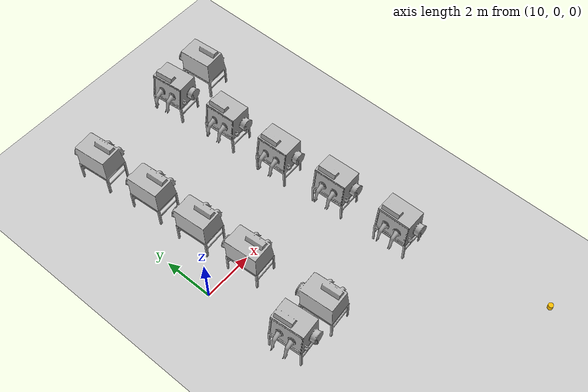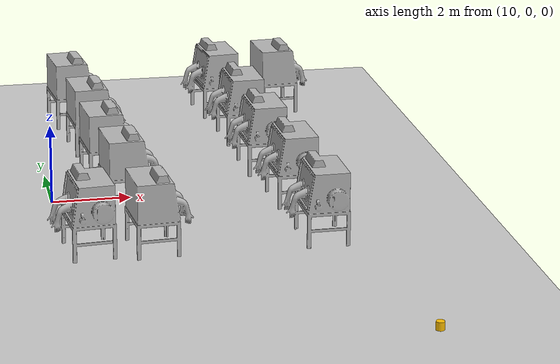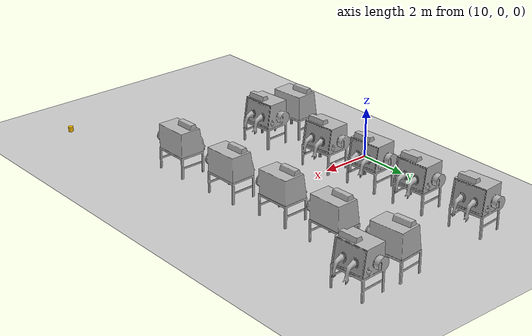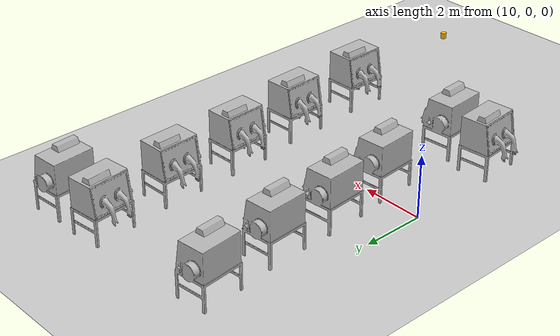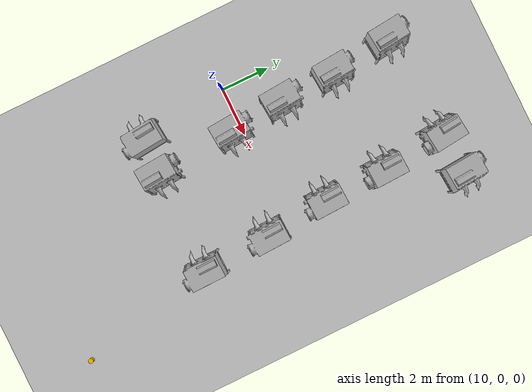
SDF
<sdf version="1.7">
 <world name="default">
  <model name="ground_plane">
   <static>1</static>
   <link name="link">
    <collision name="collision">
     <geometry><plane><normal>0 0 1</normal><size>100 100</size></plane></geometry>
     <surface><friction><ode><mu>100</mu><mu2>50</mu2></ode></friction></surface>
    </collision>
    <visual name="visual">
     <cast_shadows>0</cast_shadows>
     <geometry><plane><normal>0 0 1</normal><size>100 100</size></plane></geometry>
     <material>
      <script><uri>file://media/materials/scripts/gazebo.material</uri><name>Gazebo/Grey</name></script>
     </material>
    </visual>
   </link>
  </model>
  <model name="glovebox">
   <static>0</static>
   <link name="link">
    <visual name="visual">
     <geometry><mesh><uri>model://glovebox/meshes/glovebox.obj</uri></mesh></geometry>
    </visual>
    <collision name="collision">
     <geometry><mesh><uri>model://glovebox/meshes/glovebox.obj</uri></mesh></geometry>
    </collision>
    <inertial>
     <inertia><ixx>1</ixx><ixy>0</ixy><ixz>0</ixz><iyy>1</iyy><iyz>0</iyz><izz>1</izz></inertia>
     <mass>1</mass>
    </inertial>
   </link>
   <pose>15.6331 4.27041 -0.000963 1.57131 0.000806 -1.53503</pose>
  </model>
  <model name="glovebox_clone">
   <static>0</static>
   <link name="link">
    <visual name="visual">
     <geometry><mesh><uri>model://glovebox/meshes/glovebox.obj</uri></mesh></geometry>
    </visual>
    <collision name="collision">
     <geometry><mesh><uri>model://glovebox/meshes/glovebox.obj</uri></mesh></geometry>
    </collision>
    <inertial>
     <inertia><ixx>1</ixx><ixy>0</ixy><ixz>0</ixz><iyy>1</iyy><iyz>0</iyz><izz>1</izz></inertia>
     <mass>1</mass>
    </inertial>
   </link>
   <pose>15.7177 1.72189 -0.000963 1.57131 0.000806 -1.53503</pose>
  </model>
  <model name="glovebox_clone_0">
   <static>0</static>
   <link name="link">
    <visual name="visual">
     <geometry><mesh><uri>model://glovebox/meshes/glovebox.obj</uri></mesh></geometry>
    </visual>
    <collision name="collision">
     <geometry><mesh><uri>model://glovebox/meshes/glovebox.obj</uri></mesh></geometry>
    </collision>
    <inertial>
     <inertia><ixx>1</ixx><ixy>0</ixy><ixz>0</ixz><iyy>1</iyy><iyz>0</iyz><izz>1</izz></inertia>
     <mass>1</mass>
    </inertial>
   </link>
   <pose>15.9724 -0.829517 -0.000963 1.57131 0.000806 -1.53503</pose>
  </model>
  <model name="glovebox_clone_clone">
   <static>0</static>
   <link name="link">
    <visual name="visual">
     <geometry><mesh><uri>model://glovebox/meshes/glovebox.obj</uri></mesh></geometry>
    </visual>
    <collision name="collision">
     <geometry><mesh><uri>model://glovebox/meshes/glovebox.obj</uri></mesh></geometry>
    </collision>
    <inertial>
     <inertia><ixx>1</ixx><ixy>0</ixy><ixz>0</ixz><iyy>1</iyy><iyz>0</iyz><izz>1</izz></inertia>
     <mass>1</mass>
    </inertial>
   </link>
   <pose>16.1075 -3.61877 0.010184 1.5708 5e-06 -1.5577</pose>
  </model>
  <model name="glovebox_clone_1">
   <static>0</static>
   <link name="link">
    <visual name="visual">
     <geometry><mesh><uri>model://glovebox/meshes/glovebox.obj</uri></mesh></geometry>
    </visual>
    <collision name="collision">
     <geometry><mesh><uri>model://glovebox/meshes/glovebox.obj</uri></mesh></geometry>
    </collision>
    <inertial>
     <inertia><ixx>1</ixx><ixy>0</ixy><ixz>0</ixz><iyy>1</iyy><iyz>0</iyz><izz>1</izz></inertia>
     <mass>1</mass>
    </inertial>
   </link>
   <pose>15.3866 6.85437 -0.000963 1.57131 0.000806 -1.47053</pose>
  </model>
  <model name="glovebox_clone_1_clone">
   <static>0</static>
   <link name="link">
    <visual name="visual">
     <geometry><mesh><uri>model://glovebox/meshes/glovebox.obj</uri></mesh></geometry>
    </visual>
    <collision name="collision">
     <geometry><mesh><uri>model://glovebox/meshes/glovebox.obj</uri></mesh></geometry>
    </collision>
    <inertial>
     <inertia><ixx>1</ixx><ixy>0</ixy><ixz>0</ixz><iyy>1</iyy><iyz>0</iyz><izz>1</izz></inertia>
     <mass>1</mass>
    </inertial>
   </link>
   <pose>17.0897 6.90771 -0.000963 1.57131 0.000806 1.64229</pose>
  </model>
  <model name="glovebox_clone_1_clone_clone_3">
   <static>0</static>
   <link name="link">
    <visual name="visual">
     <geometry><mesh><uri>model://glovebox/meshes/glovebox.obj</uri></mesh></geometry>
    </visual>
    <collision name="collision">
     <geometry><mesh><uri>model://glovebox/meshes/glovebox.obj</uri></mesh></geometry>
    </collision>
    <inertial>
     <inertia><ixx>1</ixx><ixy>0</ixy><ixz>0</ixz><iyy>1</iyy><iyz>0</iyz><izz>1</izz></inertia>
     <mass>1</mass>
    </inertial>
   </link>
   <pose>11.1909 6.55629 -0.000963 1.57131 0.000806 1.6663</pose>
  </model>
  <model name="glovebox_clone_1_clone_clone_3_clone">
   <static>0</static>
   <link name="link">
    <visual name="visual">
     <geometry><mesh><uri>model://glovebox/meshes/glovebox.obj</uri></mesh></geometry>
    </visual>
    <collision name="collision">
     <geometry><mesh><uri>model://glovebox/meshes/glovebox.obj</uri></mesh></geometry>
    </collision>
    <inertial>
     <inertia><ixx>1</ixx><ixy>0</ixy><ixz>0</ixz><iyy>1</iyy><iyz>0</iyz><izz>1</izz></inertia>
     <mass>1</mass>
    </inertial>
   </link>
   <pose>11.4535 4.09863 -0.000104 1.57085 0.000199 1.64229</pose>
  </model>
  <model name="glovebox_clone_1_clone_clone_3_clone_0">
   <static>0</static>
   <link name="link">
    <visual name="visual">
     <geometry><mesh><uri>model://glovebox/meshes/glovebox.obj</uri></mesh></geometry>
    </visual>
    <collision name="collision">
     <geometry><mesh><uri>model://glovebox/meshes/glovebox.obj</uri></mesh></geometry>
    </collision>
    <inertial>
     <inertia><ixx>1</ixx><ixy>0</ixy><ixz>0</ixz><iyy>1</iyy><iyz>0</iyz><izz>1</izz></inertia>
     <mass>1</mass>
    </inertial>
   </link>
   <pose>11.5513 1.83462 -0.000172 1.57075 0.000172 1.64229</pose>
  </model>
  <model name="glovebox_clone_1_clone_clone_3_clone_1">
   <static>0</static>
   <link name="link">
    <visual name="visual">
     <geometry><mesh><uri>model://glovebox/meshes/glovebox.obj</uri></mesh></geometry>
    </visual>
    <collision name="collision">
     <geometry><mesh><uri>model://glovebox/meshes/glovebox.obj</uri></mesh></geometry>
    </collision>
    <inertial>
     <inertia><ixx>1</ixx><ixy>0</ixy><ixz>0</ixz><iyy>1</iyy><iyz>0</iyz><izz>1</izz></inertia>
     <mass>1</mass>
    </inertial>
   </link>
   <pose>11.7784 -0.389266 -0.000104 1.57085 0.000199 1.64229</pose>
  </model>
  <model name="glovebox_clone_1_clone_clone_3_clone_2">
   <static>0</static>
   <link name="link">
    <visual name="visual">
     <geometry><mesh><uri>model://glovebox/meshes/glovebox.obj</uri></mesh></geometry>
    </visual>
    <collision name="collision">
     <geometry><mesh><uri>model://glovebox/meshes/glovebox.obj</uri></mesh></geometry>
    </collision>
    <inertial>
     <inertia><ixx>1</ixx><ixy>0</ixy><ixz>0</ixz><iyy>1</iyy><iyz>0</iyz><izz>1</izz></inertia>
     <mass>1</mass>
    </inertial>
   </link>
   <pose>12.0131 -3.58427 -0.000963 1.57131 0.000806 1.64229</pose>
  </model>
  <model name="glovebox_clone_1_clone_3_clone_2">
   <static>0</static>
   <link name="link">
    <visual name="visual">
     <geometry><mesh><uri>model://glovebox/meshes/glovebox.obj</uri></mesh></geometry>
    </visual>
    <collision name="collision">
     <geometry><mesh><uri>model://glovebox/meshes/glovebox.obj</uri></mesh></geometry>
    </collision>
    <inertial>
     <inertia><ixx>1</ixx><ixy>0</ixy><ixz>0</ixz><iyy>1</iyy><iyz>0</iyz><izz>1</izz></inertia>
     <mass>1</mass>
    </inertial>
   </link>
   <pose>10.5211 -3.49439 -0.000791 1.57079 -0.000768 -1.48197</pose>
  </model>
  <model name="cylinder_yo_clone_0">
   <link name="link_0">
    <pose>0 0 0.1 0 -0 0</pose>
    <inertial>
     <mass>1</mass>
     <inertia><ixx>0.145833</ixx><ixy>0</ixy><ixz>0</ixz><iyy>0.145833</iyy><iyz>0</iyz><izz>0.125</izz></inertia>
    </inertial>
    <visual name="visual">
     <geometry><cylinder><radius>0.1</radius><length>0.2</length></cylinder></geometry>
     <material>
      <lighting>1</lighting>
      <script><uri>file://media/materials/scripts/gazebo.material</uri><name>Gazebo/Grey</name></script>
      <ambient>1 0.749 0 1</ambient>
      <diffuse>1 0.749 0 1</diffuse>
      <specular>0 0 0 1</specular>
      <emissive>0 0 0 1</emissive>
      <shader type="vertex"><normal_map>__default__</normal_map></shader>
     </material>
    </visual>
    <collision name="collision">
     <geometry><cylinder><radius>0.1</radius><length>0.2</length></cylinder></geometry>
     <surface>
      <friction>
       <ode><mu>1</mu><mu2>1</mu2><fdir1>0 0 0</fdir1><slip1>0</slip1><slip2>0</slip2></ode>
       <torsional>
        <coefficient>1</coefficient>
        <patch_radius>0</patch_radius>
        <surface_radius>0</surface_radius>
        <use_patch_radius>1</use_patch_radius>
        <ode><slip>0</slip></ode>
       </torsional>
      </friction>
      <bounce><restitution_coefficient>0</restitution_coefficient><threshold>1e+06</threshold></bounce>
      <contact>
       <collide_without_contact>0</collide_without_contact>
       <collide_without_contact_bitmask>1</collide_without_contact_bitmask>
       <collide_bitmask>1</collide_bitmask>
       <ode>
        <soft_cfm>0</soft_cfm>
        <soft_erp>0.2</soft_erp>
        <kp>1e+13</kp>
        <kd>1</kd>
        <max_vel>0.01</max_vel>
        <min_depth>0</min_depth>
       </ode>
       <bullet>
        <split_impulse>1</split_impulse>
        <split_impulse_penetration_threshold>-0.01</split_impulse_penetration_threshold>
        <soft_cfm>0</soft_cfm>
        <soft_erp>0.2</soft_erp>
        <kp>1e+13</kp>
        <kd>1</kd>
       </bullet>
      </contact>
     </surface>
    </collision>
   </link>
   <static>1</static>
   <pose>17.3616 -9.41725 0 0 -0 0</pose>
  </model>
 </world>
</sdf>
